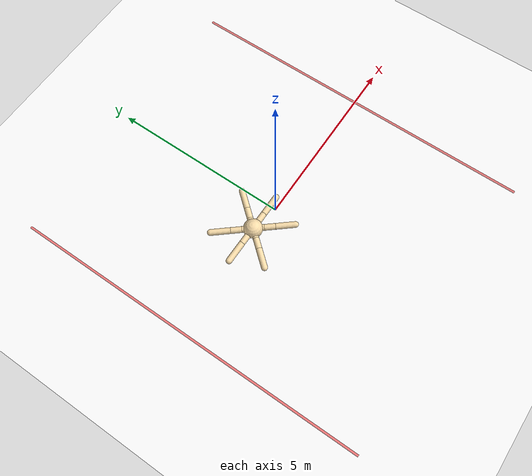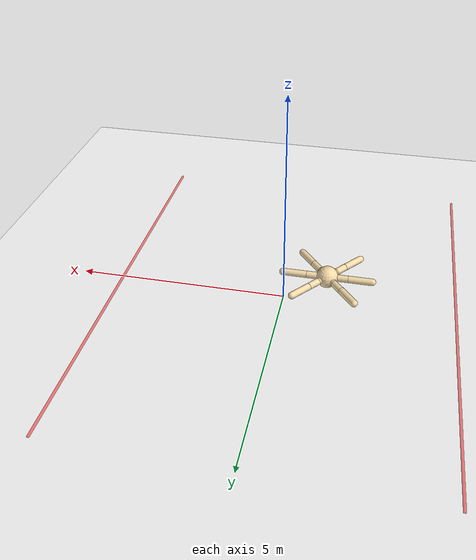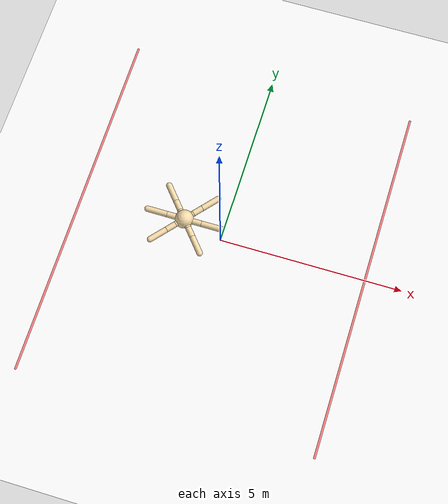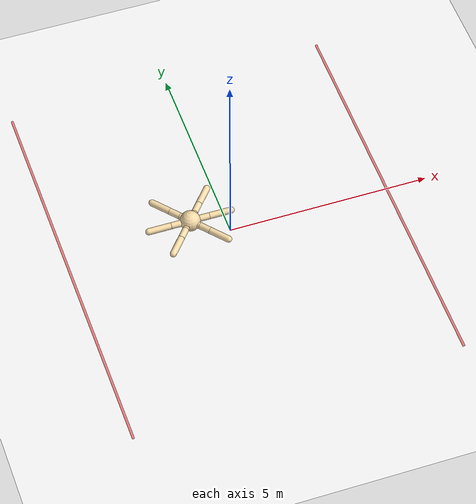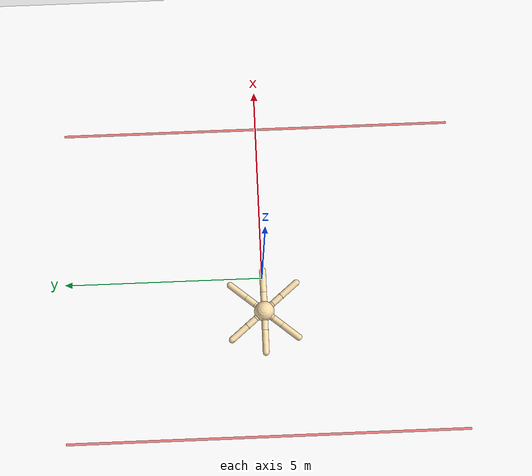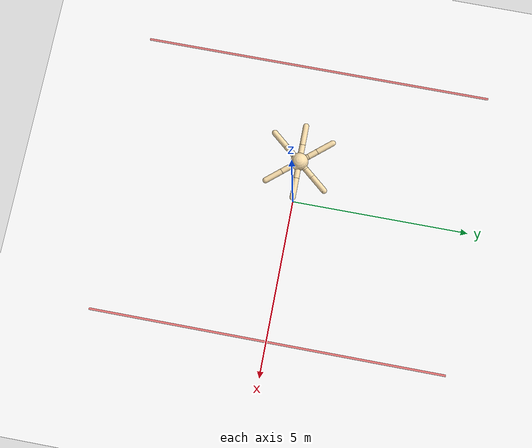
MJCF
<mujoco model="mutiagent_world">
  <compiler angle="degree" coordinate="local" inertiafromgeom="true" />

  <option integrator="RK4" timestep="0.003" solver="PGS" iterations="1000" />

  <default>
    <joint armature="1" damping="1" limited="true" />
  <default class="agent0"><geom conaffinity="0" condim="3" density="5.0" friction="1 0.5 0.5" margin="0.01" rgba="0.98 0.87 0.67 1" material="geom" contype="1" />
    <motor ctrllimited="true" ctrlrange="-1. 1." />
    <joint armature="1" damping="1" limited="true" />
  </default></default>

  <visual>
    <headlight ambient=".1 .1 .1" diffuse=".6 .6 .6" specular="0.3 0.3 0.3" />
    <map znear=".01" />
    <quality shadowsize="16384" />
  </visual>

  <asset>
    <texture builtin="gradient" height="100" rgb1=".4 .5 .6" rgb2="0 0 0" type="skybox" width="100" />
    <texture builtin="flat" height="1278" mark="cross" markrgb="0 0 0" name="texgeom" random="0.01" rgb1="0.8 0.6 0.4" rgb2="0.8 0.6 0.4" type="cube" width="127" />
    <texture builtin="checker" height="100" name="texplane" rgb1="0 0 0" rgb2="0.8 0.8 0.8" type="2d" width="100" />
    <texture name="MatPlane" type="2d" builtin="checker" rgb1=".5 .5 .5" rgb2=".5 .5 .5" width="300" height="300" mark="edge" markrgb="0.1 0.1 0.1" />
    <material name="MatPlane" texture="MatPlane" texrepeat="2 2" texuniform="true" reflectance=".2" />
    <material name="geom" texture="texgeom" texuniform="true" />
  </asset>

  <worldbody>
    <light cutoff="100" diffuse="1 1 1" dir="-0 0 -1.3" directional="true" exponent="1" pos="0 0 1.3" specular=".1 .1 .1" />
    <geom contype="1" conaffinity="1" friction="1 .1 .1" condim="3" material="MatPlane" name="floor" pos="0 0 0" rgba="1 1 1 1" size="20 20 0.125" type="plane" />
    <geom fromto="4 -5 0  4 +5 0" name="rightgoal" rgba="1 0 0 0.5" size=".03" type="cylinder" />
    <geom fromto="-4 -5 0  -4 +5 0" name="leftgoal" rgba="1 0 0 0.5" size=".03" type="cylinder" />
  <body name="agent0/0" pos="-1 0 0.75" euler="0 0 0">
      <geom pos="0 0 0" size="0.25" type="sphere" class="agent0" name="agent0/anon3852273568" />
      <joint armature="0" damping="0" limited="false" margin="0.01" name="agent0/0_joint" pos="0 0 0" type="free" />

      <body name="agent0/1" pos="0 0 0">
        <geom fromto="0 0 0 0.18 0.215 0" size="0.08" type="capsule" class="agent0" name="agent0/anon5509602487" />
        <body name="agent0/11" pos="0.18 0.215 0">
          <joint axis="0 0 1" name="agent0/11_joint" pos="0 0 0" range="-30 30" type="hinge" />
          <geom fromto="0 0 0 0.18 0.215 0" size="0.08" type="capsule" class="agent0" name="agent0/anon9397177136" />
          <body name="agent0/111" pos="0.18 0.215 0">
            <joint axis="-1 1 0" name="agent0/111_joint" pos="0 0 0" range="30 70" type="hinge" />
            <geom fromto="0 0 0 0.324 0.387 0" size="0.08" type="capsule" class="agent0" name="agent0/anon9484805776" />
          </body>
        </body>
      </body>

      <body name="agent0/2" pos="0 0 0">
        <geom fromto="0 0 0 -0.18 0.215 0" size="0.08" type="capsule" class="agent0" name="agent0/anon8747413249" />
        <body name="agent0/12" pos="-0.18 0.215 0">
          <joint axis="0 0 1" name="agent0/12_joint" pos="0 0 0" range="-30 30" type="hinge" />
          <geom fromto="0 0 0 -0.18 0.215 0" size="0.08" type="capsule" class="agent0" name="agent0/anon6444303429" />
          <body name="agent0/112" pos="-0.18 0.215 0">
            <joint axis="1 1 0" name="agent0/112_joint" pos="0 0 0" range="-70 -30" type="hinge" />
            <geom fromto="0 0 0 -0.324 0.387 0" size="0.08" type="capsule" class="agent0" name="agent0/anon3609262151" />
          </body>
        </body>
      </body>

      <body name="agent0/3" pos="0 0 0">
        <geom fromto="0 0 0 -0.2 0 0" size="0.08" type="capsule" class="agent0" name="agent0/anon4349916427" />
        <body name="agent0/13" pos="-0.2 0 0">
          <joint axis="0 0 1" name="agent0/13_joint" pos="0 0 0" range="-30 30" type="hinge" />
          <geom fromto="0 0 0 -0.275 0 0" size="0.08" type="capsule" class="agent0" name="agent0/anon5177794529" />
          <body name="agent0/113" pos="-0.275 0 0">
            <joint axis="0 1 0" name="agent0/113_joint" pos="0 0 0" range="-70 -30" type="hinge" />
            <geom fromto="0 0 0 -0.55 0 0" size="0.08" type="capsule" class="agent0" name="agent0/anon6937772810" />
          </body>
        </body>
      </body>

      <body name="agent0/4" pos="0 0 0">
        <geom fromto="0 0 0 0.2 0 0" size="0.08" type="capsule" class="agent0" name="agent0/anon1262790924" />
        <body name="agent0/14" pos="0.2 0 0">
          <joint axis="0 0 1" name="agent0/14_joint" pos="0 0 0" range="-30 30" type="hinge" />
          <geom fromto="0 0 0 0.275 0 0" size="0.08" type="capsule" class="agent0" name="agent0/anon9373291060" />
          <body name="agent0/114" pos="0.275 0 0">
            <joint axis="0 1 0" name="agent0/114_joint" pos="0 0 0" range="30 70" type="hinge" />
            <geom fromto="0 0 0 0.55 0 0" size="0.08" type="capsule" class="agent0" name="agent0/anon7284450464" />
          </body>
        </body>
      </body>

      <body name="agent0/5" pos="0 0 0">
        <geom fromto="0 0 0 -0.18 -0.215 0" size="0.08" type="capsule" class="agent0" name="agent0/anon7970252207" />
        <body name="agent0/15" pos="-0.18 -0.215 0">
          <joint axis="0 0 1" name="agent0/15_joint" pos="0 0 0" range="-30 30" type="hinge" />
          <geom fromto="0 0 0 -0.18 -0.215 0" size="0.08" type="capsule" class="agent0" name="agent0/anon1493605697" />
          <body name="agent0/115" pos="-0.18 -0.215 0">
            <joint axis="-1 1 0" name="agent0/115_joint" pos="0 0 0" range="-70 -30" type="hinge" />
            <geom fromto="0 0 0 -0.324 -0.387 0" size="0.08" type="capsule" class="agent0" name="agent0/anon8430661098" />
          </body>
        </body>
      </body>

      <body name="agent0/6" pos="0 0 0">
        <geom fromto="0 0 0 0.18 -0.215 0" size="0.08" type="capsule" class="agent0" name="agent0/anon2030257615" />
        <body name="agent0/16" pos="0.18 -0.215 0">
          <joint axis="0 0 1" name="agent0/16_joint" pos="0 0 0" range="-30 30" type="hinge" />
          <geom fromto="0 0 0 0.18 -0.215 0" size="0.08" type="capsule" class="agent0" name="agent0/anon8270514356" />
          <body name="agent0/116" pos="0.18 -0.215 0">
            <joint axis="1 1 0" name="agent0/116_joint" pos="0 0 0" range="30 70" type="hinge" />
            <geom fromto="0 0 0 0.324 -0.387 0" size="0.08" type="capsule" class="agent0" name="agent0/anon1319293857" />
          </body>
        </body>
      </body>
    </body>

  </worldbody>
<actuator>
    <motor ctrllimited="true" ctrlrange="-1.0 1.0" joint="agent0/11_joint" gear="150" name="agent0/11_joint" class="agent0" />
    <motor ctrllimited="true" ctrlrange="-1.0 1.0" joint="agent0/111_joint" gear="150" name="agent0/111_joint" class="agent0" />
    <motor ctrllimited="true" ctrlrange="-1.0 1.0" joint="agent0/12_joint" gear="150" name="agent0/12_joint" class="agent0" />
    <motor ctrllimited="true" ctrlrange="-1.0 1.0" joint="agent0/112_joint" gear="150" name="agent0/112_joint" class="agent0" />
    <motor ctrllimited="true" ctrlrange="-1.0 1.0" joint="agent0/13_joint" gear="150" name="agent0/13_joint" class="agent0" />
    <motor ctrllimited="true" ctrlrange="-1.0 1.0" joint="agent0/113_joint" gear="150" name="agent0/113_joint" class="agent0" />
    <motor ctrllimited="true" ctrlrange="-1.0 1.0" joint="agent0/14_joint" gear="150" name="agent0/14_joint" class="agent0" />
    <motor ctrllimited="true" ctrlrange="-1.0 1.0" joint="agent0/114_joint" gear="150" name="agent0/114_joint" class="agent0" />
    <motor ctrllimited="true" ctrlrange="-1.0 1.0" joint="agent0/15_joint" gear="150" name="agent0/15_joint" class="agent0" />
    <motor ctrllimited="true" ctrlrange="-1.0 1.0" joint="agent0/115_joint" gear="150" name="agent0/115_joint" class="agent0" />
    <motor ctrllimited="true" ctrlrange="-1.0 1.0" joint="agent0/16_joint" gear="150" name="agent0/16_joint" class="agent0" />
    <motor ctrllimited="true" ctrlrange="-1.0 1.0" joint="agent0/116_joint" gear="150" name="agent0/116_joint" class="agent0" />
  </actuator>

</mujoco>
